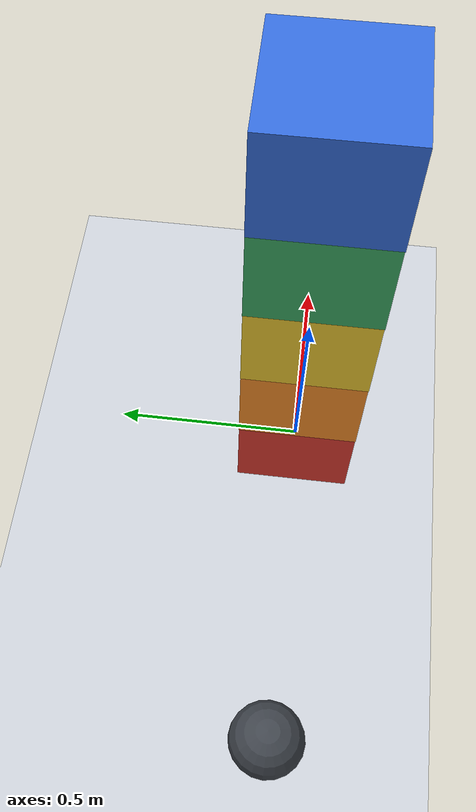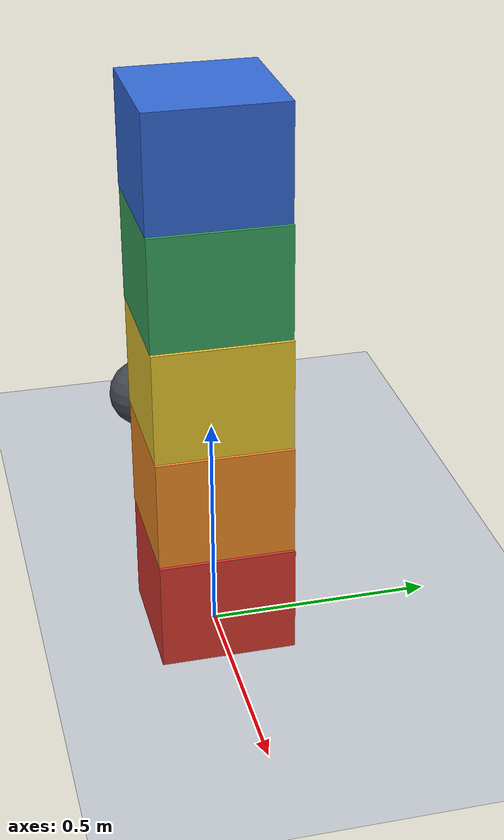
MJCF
<mujoco model="five_block_topple">
  <compiler angle="degree"/>
  <option timestep="0.002" gravity="0 0 -9.81" integrator="implicitfast" solver="Newton" iterations="80" cone="elliptic"/>
  <size njmax="1000" nconmax="200"/>

  <visual>
    <headlight ambient="0.35 0.35 0.35" diffuse="0.65 0.65 0.65" specular="0.2 0.2 0.2"/>
  </visual>

  <worldbody>
    <light name="overhead" pos="-2 -3 5" dir="0.3 0.4 -1" directional="true"/>
    <camera name="overview" pos="3 -5 2.7" xyaxes="0.857 0.514 0 -0.186 0.310 0.932"/>

    <geom name="floor" type="plane" pos="0 0 0" size="5 5 0.1" friction="0.65 0.005 0.0001" condim="3" rgba="0.78 0.80 0.83 1"/>

    <body name="block1" pos="0 0 0.125">
      <freejoint name="block1_free"/>
      <geom name="block1_geom" type="box" size="0.15 0.15 0.125" mass="0.7" friction="0.55 0.005 0.0001" condim="3" solref="0.008 1" solimp="0.95 0.99 0.001" rgba="0.85 0.22 0.18 1"/>
    </body>

    <body name="block2" pos="-0.008 0 0.375">
      <freejoint name="block2_free"/>
      <geom name="block2_geom" type="box" size="0.15 0.15 0.125" mass="0.7" friction="0.55 0.005 0.0001" condim="3" solref="0.008 1" solimp="0.95 0.99 0.001" rgba="0.95 0.55 0.15 1"/>
    </body>

    <body name="block3" pos="-0.016 0 0.625">
      <freejoint name="block3_free"/>
      <geom name="block3_geom" type="box" size="0.15 0.15 0.125" mass="0.7" friction="0.55 0.005 0.0001" condim="3" solref="0.008 1" solimp="0.95 0.99 0.001" rgba="0.92 0.78 0.18 1"/>
    </body>

    <body name="block4" pos="-0.024 0 0.875">
      <freejoint name="block4_free"/>
      <geom name="block4_geom" type="box" size="0.15 0.15 0.125" mass="0.7" friction="0.55 0.005 0.0001" condim="3" solref="0.008 1" solimp="0.95 0.99 0.001" rgba="0.22 0.65 0.38 1"/>
    </body>

    <body name="block5" pos="-0.032 0 1.125">
      <freejoint name="block5_free"/>
      <geom name="block5_geom" type="box" size="0.15 0.15 0.125" mass="0.7" friction="0.55 0.005 0.0001" condim="3" solref="0.008 1" solimp="0.95 0.99 0.001" rgba="0.20 0.42 0.85 1"/>
    </body>

    <body name="pusher" pos="-0.9 0 0.125">
      <joint name="pusher_slide" type="slide" axis="1 0 0" limited="true" range="0 1.55" damping="0.5"/>
      <geom name="pusher_geom" type="sphere" size="0.09" mass="2" friction="0.25 0.005 0.0001" condim="3" solref="0.008 1" solimp="0.95 0.99 0.001" rgba="0.25 0.27 0.30 1"/>
    </body>
  </worldbody>

  <actuator>
    <velocity name="pusher_drive" joint="pusher_slide" kv="150" ctrllimited="true" ctrlrange="0 0.9" forcelimited="true" forcerange="-120 120"/>
  </actuator>

  <keyframe>
    <key name="start" ctrl="0.9"/>
  </keyframe>
</mujoco>
